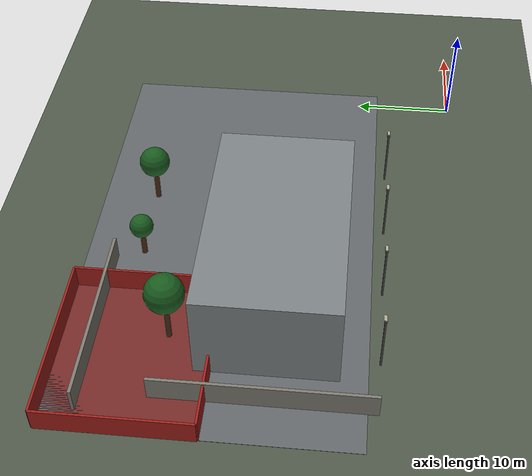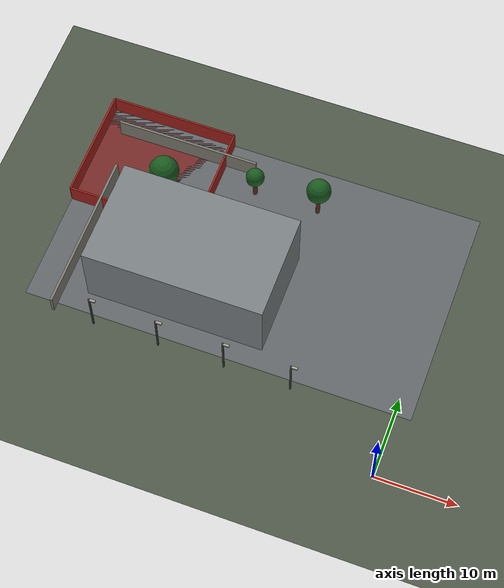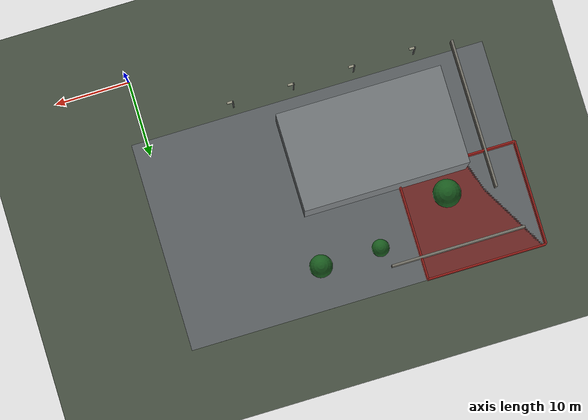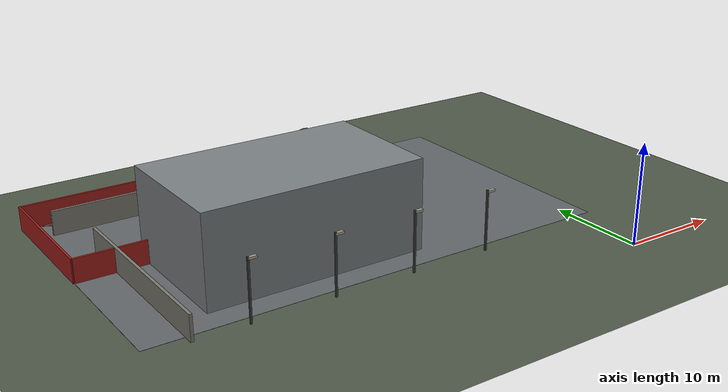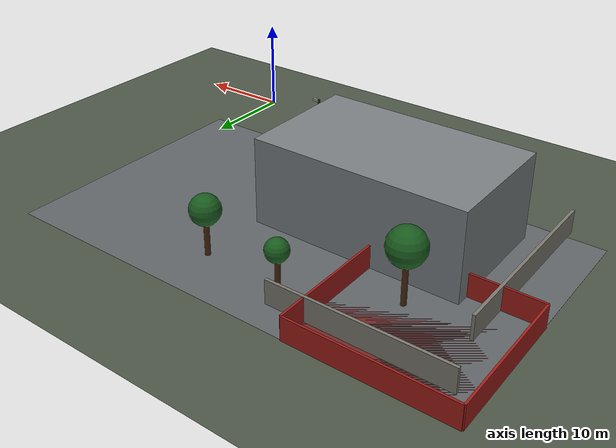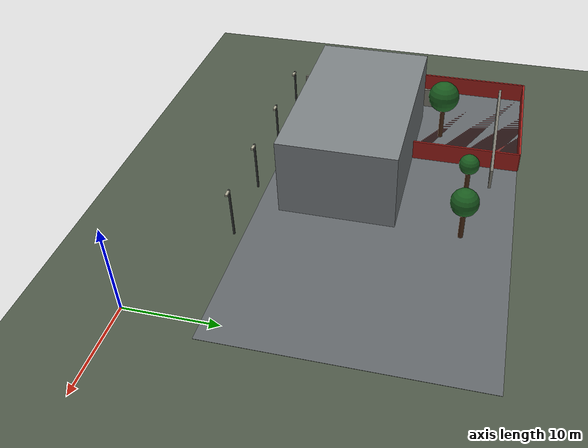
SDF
<sdf version="1.9">
 <world name="gsi_search_world_v2_industrial">
  <model name="ground_plane">
   <static>true</static>
   <link name="link">
    <collision name="collision">
     <geometry><plane><normal>0 0 1</normal><size>130 110</size></plane></geometry>
    </collision>
    <visual name="visual">
     <geometry><plane><normal>0 0 1</normal><size>130 110</size></plane></geometry>
     <material>
      <ambient>0.3 0.34 0.28 1</ambient>
      <diffuse>0.3 0.34 0.28 1</diffuse>
      <specular>0.12 0.12 0.12 1</specular>
     </material>
    </visual>
   </link>
  </model>
  <model name="semantic-warehouse-yard">
   <static>true</static>
   <pose>-22 22 0.015 0 0 0</pose>
   <link name="link">
    <visual name="visual">
     <geometry><box><size>48 28 0.02</size></box></geometry>
     <cast_shadows>false</cast_shadows>
     <material>
      <ambient>0.38 0.4 0.41 1</ambient>
      <diffuse>0.38 0.4 0.41 1</diffuse>
      <specular>0.12 0.12 0.12 1</specular>
     </material>
    </visual>
   </link>
  </model>
  <model name="semantic-restricted-tank-farm">
   <static>true</static>
   <pose>-38 29 0.015 0 0 0</pose>
   <link name="link">
    <visual name="visual">
     <geometry><box><size>16 14 0.02</size></box></geometry>
     <cast_shadows>false</cast_shadows>
     <material>
      <ambient>0.45 0.16 0.15 1</ambient>
      <diffuse>0.45 0.16 0.15 1</diffuse>
      <specular>0.12 0.12 0.12 1</specular>
     </material>
    </visual>
   </link>
  </model>
  <model name="warehouse-a">
   <static>true</static>
   <pose>-28 17 4.5 0 0 0</pose>
   <link name="link">
    <collision name="collision"><geometry><box><size>22 13 9</size></box></geometry></collision>
    <visual name="visual">
     <geometry><box><size>22 13 9</size></box></geometry>
     <material>
      <ambient>0.48 0.5 0.51 1</ambient>
      <diffuse>0.48 0.5 0.51 1</diffuse>
      <specular>0.12 0.12 0.12 1</specular>
     </material>
    </visual>
   </link>
  </model>
  <model name="tree-02">
   <static>true</static>
   <pose>-35.2842 26.2408 0 0 0 0</pose>
   <link name="tree">
    <collision name="trunk_collision">
     <pose>0 0 2.59275 0 0 0</pose>
     <geometry><cylinder><radius>0.32</radius><length>5.1855</length></cylinder></geometry>
    </collision>
    <visual name="trunk">
     <pose>0 0 2.59275 0 0 0</pose>
     <geometry><cylinder><radius>0.28</radius><length>5.1855</length></cylinder></geometry>
     <material>
      <ambient>0.28 0.16 0.08 1</ambient>
      <diffuse>0.28 0.16 0.08 1</diffuse>
      <specular>0.12 0.12 0.12 1</specular>
     </material>
    </visual>
    <visual name="canopy">
     <pose>0 0 5.77813 0 0 0</pose>
     <geometry><sphere><radius>1.85196</radius></sphere></geometry>
     <material>
      <ambient>0.1 0.36 0.12 1</ambient>
      <diffuse>0.1 0.36 0.12 1</diffuse>
      <specular>0.12 0.12 0.12 1</specular>
     </material>
    </visual>
   </link>
  </model>
  <model name="tree-03">
   <static>true</static>
   <pose>-25.1791 30.421 0 0 0 0</pose>
   <link name="tree">
    <collision name="trunk_collision">
     <pose>0 0 1.61288 0 0 0</pose>
     <geometry><cylinder><radius>0.32</radius><length>3.22576</length></cylinder></geometry>
    </collision>
    <visual name="trunk">
     <pose>0 0 1.61288 0 0 0</pose>
     <geometry><cylinder><radius>0.28</radius><length>3.22576</length></cylinder></geometry>
     <material>
      <ambient>0.28 0.16 0.08 1</ambient>
      <diffuse>0.28 0.16 0.08 1</diffuse>
      <specular>0.12 0.12 0.12 1</specular>
     </material>
    </visual>
    <visual name="canopy">
     <pose>0 0 3.59442 0 0 0</pose>
     <geometry><sphere><radius>1.15206</radius></sphere></geometry>
     <material>
      <ambient>0.1 0.36 0.12 1</ambient>
      <diffuse>0.1 0.36 0.12 1</diffuse>
      <specular>0.12 0.12 0.12 1</specular>
     </material>
    </visual>
   </link>
  </model>
  <model name="tree-04">
   <static>true</static>
   <pose>-20.7774 14.8373 0 0 0 0</pose>
   <link name="tree">
    <collision name="trunk_collision">
     <pose>0 0 2.09398 0 0 0</pose>
     <geometry><cylinder><radius>0.32</radius><length>4.18796</length></cylinder></geometry>
    </collision>
    <visual name="trunk">
     <pose>0 0 2.09398 0 0 0</pose>
     <geometry><cylinder><radius>0.28</radius><length>4.18796</length></cylinder></geometry>
     <material>
      <ambient>0.28 0.16 0.08 1</ambient>
      <diffuse>0.28 0.16 0.08 1</diffuse>
      <specular>0.12 0.12 0.12 1</specular>
     </material>
    </visual>
    <visual name="canopy">
     <pose>0 0 4.66658 0 0 0</pose>
     <geometry><sphere><radius>1.4957</radius></sphere></geometry>
     <material>
      <ambient>0.1 0.36 0.12 1</ambient>
      <diffuse>0.1 0.36 0.12 1</diffuse>
      <specular>0.12 0.12 0.12 1</specular>
     </material>
    </visual>
   </link>
  </model>
  <model name="tree-05">
   <static>true</static>
   <pose>-17.1049 30.5418 0 0 0 0</pose>
   <link name="tree">
    <collision name="trunk_collision">
     <pose>0 0 2.12411 0 0 0</pose>
     <geometry><cylinder><radius>0.32</radius><length>4.24823</length></cylinder></geometry>
    </collision>
    <visual name="trunk">
     <pose>0 0 2.12411 0 0 0</pose>
     <geometry><cylinder><radius>0.28</radius><length>4.24823</length></cylinder></geometry>
     <material>
      <ambient>0.28 0.16 0.08 1</ambient>
      <diffuse>0.28 0.16 0.08 1</diffuse>
      <specular>0.12 0.12 0.12 1</specular>
     </material>
    </visual>
    <visual name="canopy">
     <pose>0 0 4.73374 0 0 0</pose>
     <geometry><sphere><radius>1.51722</radius></sphere></geometry>
     <material>
      <ambient>0.1 0.36 0.12 1</ambient>
      <diffuse>0.1 0.36 0.12 1</diffuse>
      <specular>0.12 0.12 0.12 1</specular>
     </material>
    </visual>
   </link>
  </model>
  <model name="yard-wall-west">
   <static>true</static>
   <pose>-42 17 1.25 0 0 0</pose>
   <link name="link">
    <collision name="collision"><geometry><box><size>0.3 20 2.5</size></box></geometry></collision>
    <visual name="visual">
     <geometry><box><size>0.3 20 2.5</size></box></geometry>
     <material>
      <ambient>0.48 0.47 0.43 1</ambient>
      <diffuse>0.48 0.47 0.43 1</diffuse>
      <specular>0.12 0.12 0.12 1</specular>
     </material>
    </visual>
   </link>
  </model>
  <model name="tank-farm-wall">
   <static>true</static>
   <pose>-35 33 1.25 0 0 0</pose>
   <link name="link">
    <collision name="collision"><geometry><box><size>18 0.3 2.5</size></box></geometry></collision>
    <visual name="visual">
     <geometry><box><size>18 0.3 2.5</size></box></geometry>
     <material>
      <ambient>0.48 0.47 0.43 1</ambient>
      <diffuse>0.48 0.47 0.43 1</diffuse>
      <specular>0.12 0.12 0.12 1</specular>
     </material>
    </visual>
   </link>
  </model>
  <model name="utility-pole-01">
   <static>true</static>
   <pose>-36.8182 7 3 0 0 0</pose>
   <link name="link">
    <collision name="collision"><geometry><box><size>0.18 0.18 6</size></box></geometry></collision>
    <visual name="visual">
     <geometry><box><size>0.18 0.18 6</size></box></geometry>
     <material>
      <ambient>0.24 0.25 0.24 1</ambient>
      <diffuse>0.24 0.25 0.24 1</diffuse>
      <specular>0.12 0.12 0.12 1</specular>
     </material>
    </visual>
   </link>
  </model>
  <model name="utility-pole-01-lamp">
   <static>true</static>
   <pose>-36.4382 7 5.85 0 0 0</pose>
   <link name="link">
    <visual name="visual">
     <geometry><box><size>0.8 0.28 0.22</size></box></geometry>
     <material>
      <ambient>0.66 0.65 0.57 1</ambient>
      <diffuse>0.66 0.65 0.57 1</diffuse>
      <specular>0.12 0.12 0.12 1</specular>
     </material>
    </visual>
   </link>
  </model>
  <model name="utility-pole-02">
   <static>true</static>
   <pose>-28.6364 7 3 0 0 0</pose>
   <link name="link">
    <collision name="collision"><geometry><box><size>0.18 0.18 6</size></box></geometry></collision>
    <visual name="visual">
     <geometry><box><size>0.18 0.18 6</size></box></geometry>
     <material>
      <ambient>0.24 0.25 0.24 1</ambient>
      <diffuse>0.24 0.25 0.24 1</diffuse>
      <specular>0.12 0.12 0.12 1</specular>
     </material>
    </visual>
   </link>
  </model>
  <model name="utility-pole-02-lamp">
   <static>true</static>
   <pose>-28.2564 7 5.85 0 0 0</pose>
   <link name="link">
    <visual name="visual">
     <geometry><box><size>0.8 0.28 0.22</size></box></geometry>
     <material>
      <ambient>0.66 0.65 0.57 1</ambient>
      <diffuse>0.66 0.65 0.57 1</diffuse>
      <specular>0.12 0.12 0.12 1</specular>
     </material>
    </visual>
   </link>
  </model>
  <model name="utility-pole-03">
   <static>true</static>
   <pose>-20.4545 7 3 0 0 0</pose>
   <link name="link">
    <collision name="collision"><geometry><box><size>0.18 0.18 6</size></box></geometry></collision>
    <visual name="visual">
     <geometry><box><size>0.18 0.18 6</size></box></geometry>
     <material>
      <ambient>0.24 0.25 0.24 1</ambient>
      <diffuse>0.24 0.25 0.24 1</diffuse>
      <specular>0.12 0.12 0.12 1</specular>
     </material>
    </visual>
   </link>
  </model>
  <model name="utility-pole-03-lamp">
   <static>true</static>
   <pose>-20.0745 7 5.85 0 0 0</pose>
   <link name="link">
    <visual name="visual">
     <geometry><box><size>0.8 0.28 0.22</size></box></geometry>
     <material>
      <ambient>0.66 0.65 0.57 1</ambient>
      <diffuse>0.66 0.65 0.57 1</diffuse>
      <specular>0.12 0.12 0.12 1</specular>
     </material>
    </visual>
   </link>
  </model>
  <model name="utility-pole-04">
   <static>true</static>
   <pose>-12.2727 7 3 0 0 0</pose>
   <link name="link">
    <collision name="collision"><geometry><box><size>0.18 0.18 6</size></box></geometry></collision>
    <visual name="visual">
     <geometry><box><size>0.18 0.18 6</size></box></geometry>
     <material>
      <ambient>0.24 0.25 0.24 1</ambient>
      <diffuse>0.24 0.25 0.24 1</diffuse>
      <specular>0.12 0.12 0.12 1</specular>
     </material>
    </visual>
   </link>
  </model>
  <model name="utility-pole-04-lamp">
   <static>true</static>
   <pose>-11.8927 7 5.85 0 0 0</pose>
   <link name="link">
    <visual name="visual">
     <geometry><box><size>0.8 0.28 0.22</size></box></geometry>
     <material>
      <ambient>0.66 0.65 0.57 1</ambient>
      <diffuse>0.66 0.65 0.57 1</diffuse>
      <specular>0.12 0.12 0.12 1</specular>
     </material>
    </visual>
   </link>
  </model>
  <model name="restricted-tank-farm-fence-south">
   <static>true</static>
   <pose>-38 22 1.2 0 0 0</pose>
   <link name="link">
    <collision name="collision"><geometry><box><size>16 0.22 2.4</size></box></geometry></collision>
    <visual name="visual">
     <geometry><box><size>16 0.22 2.4</size></box></geometry>
     <material>
      <ambient>0.62 0.12 0.1 1</ambient>
      <diffuse>0.62 0.12 0.1 1</diffuse>
      <specular>0.12 0.12 0.12 1</specular>
     </material>
    </visual>
   </link>
  </model>
  <model name="restricted-tank-farm-fence-north">
   <static>true</static>
   <pose>-38 36 1.2 0 0 0</pose>
   <link name="link">
    <collision name="collision"><geometry><box><size>16 0.22 2.4</size></box></geometry></collision>
    <visual name="visual">
     <geometry><box><size>16 0.22 2.4</size></box></geometry>
     <material>
      <ambient>0.62 0.12 0.1 1</ambient>
      <diffuse>0.62 0.12 0.1 1</diffuse>
      <specular>0.12 0.12 0.12 1</specular>
     </material>
    </visual>
   </link>
  </model>
  <model name="restricted-tank-farm-fence-west">
   <static>true</static>
   <pose>-46 29 1.2 0 0 0</pose>
   <link name="link">
    <collision name="collision"><geometry><box><size>0.22 14 2.4</size></box></geometry></collision>
    <visual name="visual">
     <geometry><box><size>0.22 14 2.4</size></box></geometry>
     <material>
      <ambient>0.62 0.12 0.1 1</ambient>
      <diffuse>0.62 0.12 0.1 1</diffuse>
      <specular>0.12 0.12 0.12 1</specular>
     </material>
    </visual>
   </link>
  </model>
  <model name="restricted-tank-farm-fence-east">
   <static>true</static>
   <pose>-30 29 1.2 0 0 0</pose>
   <link name="link">
    <collision name="collision"><geometry><box><size>0.22 14 2.4</size></box></geometry></collision>
    <visual name="visual">
     <geometry><box><size>0.22 14 2.4</size></box></geometry>
     <material>
      <ambient>0.62 0.12 0.1 1</ambient>
      <diffuse>0.62 0.12 0.1 1</diffuse>
      <specular>0.12 0.12 0.12 1</specular>
     </material>
    </visual>
   </link>
  </model>
 </world>
</sdf>
